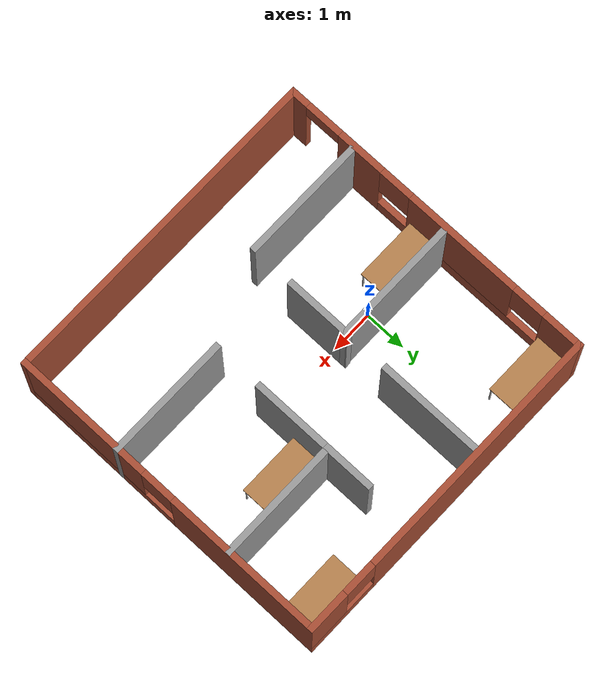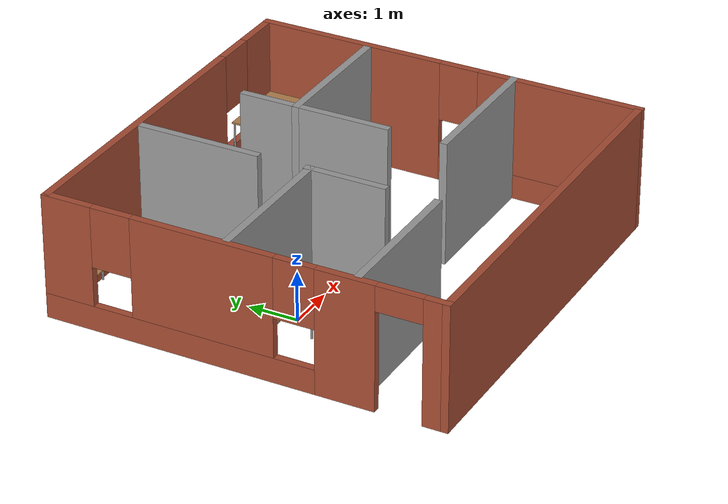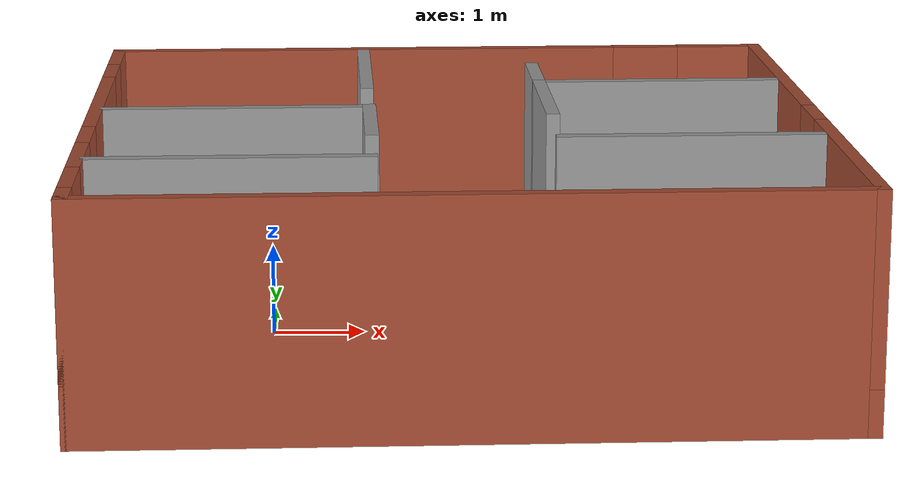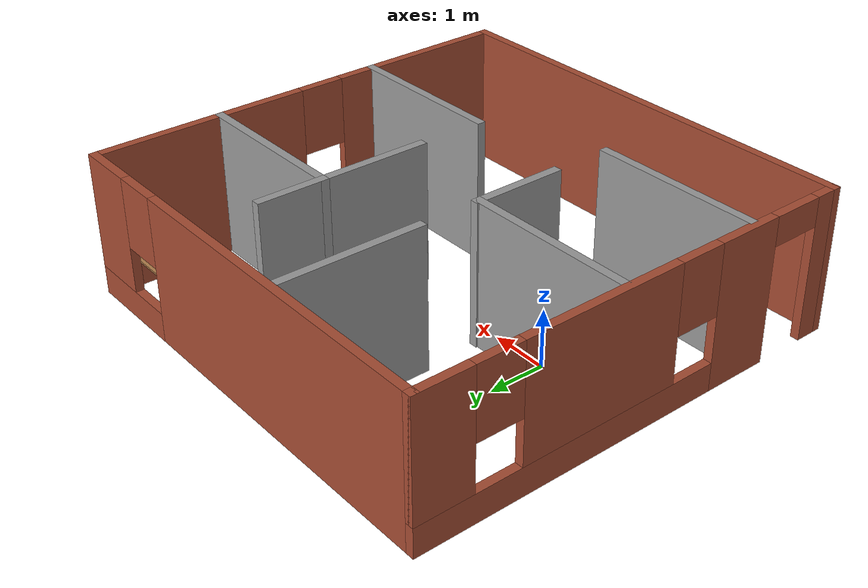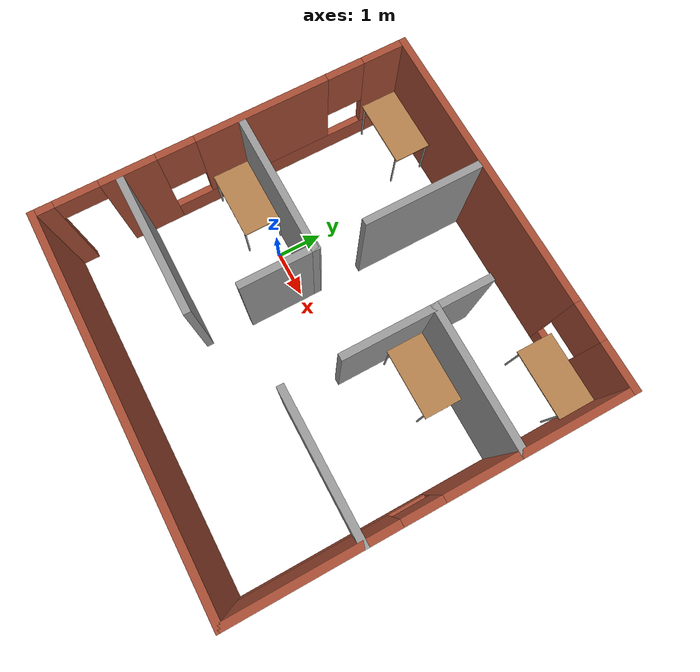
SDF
<?xml version="1.0" ?>
<sdf version="1.10">
    <world name="empty_world">
        <physics name="1ms" type="ignored">
            <max_step_size>0.001</max_step_size>
            <real_time_factor>1.0</real_time_factor>
        </physics>
        <plugin
            filename="gz-sim-physics-system"
            name="gz::sim::systems::Physics">
        </plugin>
        <plugin
            filename="gz-sim-user-commands-system"
            name="gz::sim::systems::UserCommands">
        </plugin>
        <plugin
            filename="gz-sim-scene-broadcaster-system"
            name="gz::sim::systems::SceneBroadcaster">
        </plugin>

        <plugin
            filename="gz-sim-sensors-system"
            name="gz::sim::systems::Sensors">
            <render_engine>ogre2</render_engine>
        </plugin>

        <light type="directional" name="sun">
            <cast_shadows>false</cast_shadows>
            <pose>0 0 10 0 0 0</pose>
            <diffuse>0.8 0.8 0.8 1</diffuse>
            <specular>0.2 0.2 0.2 1</specular>
            <attenuation>
                <range>1000</range>
                <constant>0.9</constant>
                <linear>0.01</linear>
                <quadratic>0.001</quadratic>
            </attenuation>
            <direction>-0.5 0.1 -0.9</direction>
        </light>

        <include>
            <uri>/world_wall/model.sdf</uri>
            <pose>2 0 0 0 0 0</pose>
        </include>

    </world>
</sdf>
